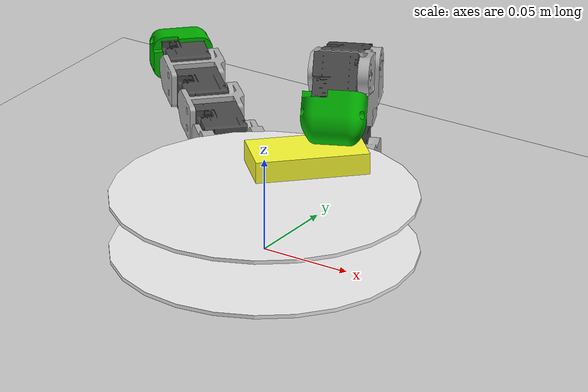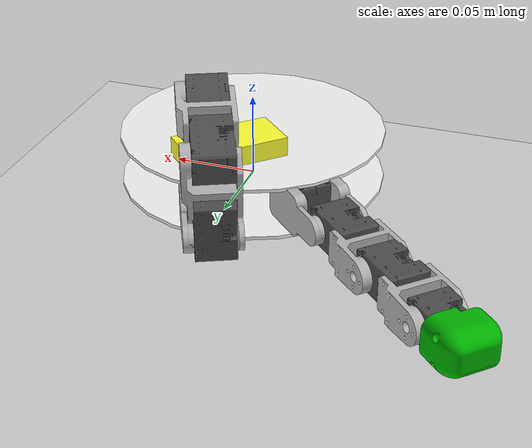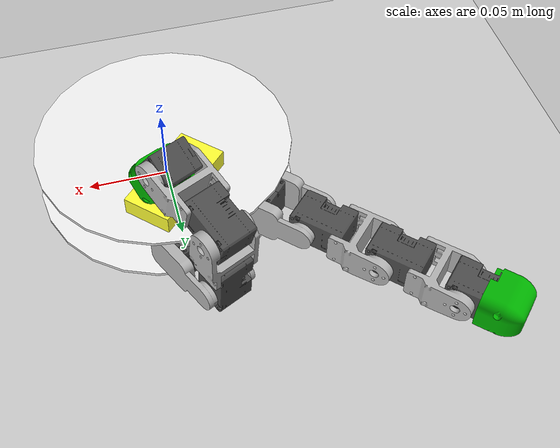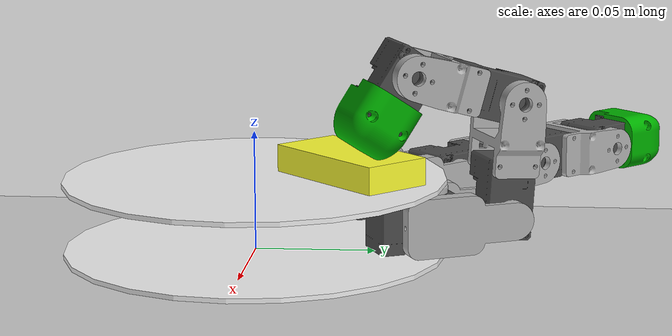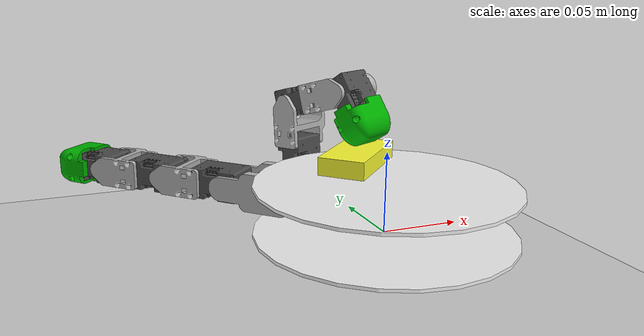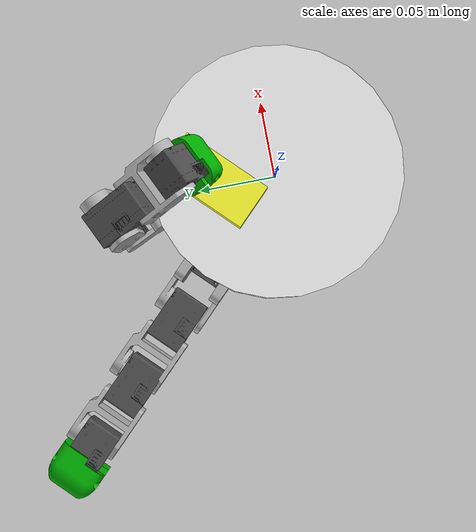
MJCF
<mujoco model="iiwa7">
    <compiler angle="radian" inertiafromgeom="true" meshdir="descriptions/v2/meshes/" />
    <size njmax="500" nconmax="100" />

    <option>
        <flag gravity="enable" />
    </option>

    <default>
        <joint limited="true" damping="1" armature="0" />
        <geom contype="1" conaffinity="1" condim="3" rgba="0.8 0.6 .4 1" margin="0.001" solref=".02 1" solimp=".8 .8 .01" material="geom" />
    </default>
<visual>
       <scale forcewidth="0.1" contactwidth="0.1" contactheight="0.1" />
 </visual>

 <default>
    <joint damping="0.01" frictionloss="0" />
    <default class="visual">
      <geom contype="0" conaffinity="0" />
    </default>
    <default class="collision">
      <geom contype="1" conaffinity="1" friction="1 0 0.1" solref="-100000 -200" />
    </default>
      <default class="obj">
      <geom condim="6" friction="1 0.5 0.1" />
    </default>

      <default class="fingers">
      <geom friction="1 0.5 0.2" />
    </default>

      <default class="sliding_finger">
      <geom friction="0.001 0. 0" />
    </default>
      <default class="visual1">
      <geom contype="1" conaffinity="1" />
    </default>
        <default class="visual2">
     <geom contype="1" conaffinity="1" />
    </default>
        <default class="visual3">
     <geom contype="1" conaffinity="1" />
    </default>
        <default class="visual4">
     <geom contype="1" conaffinity="1" />
    </default>
        <default class="visual5">
      <geom contype="1" conaffinity="1" />
    </default>

    <site rgba="1 0 0 0" />
  </default>

        <asset>
            <mesh name="base_link" file="base_link.stl" scale="0.001 0.001 0.001" />
            <mesh name="MCP_spread_motor_1" file="MCP_spread_motor_1.stl" scale="0.001 0.001 0.001" />
            <mesh name="MCP_motor_1" file="MCP_motor_1.stl" scale="0.001 0.001 0.001" />
            <mesh name="proximal_1" file="proximal_1.stl" scale="0.001 0.001 0.001" />
            <mesh name="PIP_DIP_motor_1" file="PIP_motor_1.stl" scale="0.001 0.001 0.001" />
            <mesh name="middle_1" file="middle_1.stl" scale="0.001 0.001 0.001" />
            <mesh name="distal_1" file="distal_1.stl" scale="0.001 0.001 0.001" />
             <mesh name="DIP_motor_1" file="DIP_motor_1.stl" scale="0.001 0.001 0.001" />
            <mesh name="metacarpal_1" file="metacarpal_1.stl" scale="0.001 0.001 0.001" />

            <texture name="texgeom" type="cube" builtin="flat" mark="cross" width="127" height="1278" rgb1="0.8 0.6 0.4" rgb2="0.8 0.6 0.4" markrgb="1 1 1" random="0.01" />
            <texture name="texplane" type="2d" builtin="checker" rgb1=".2 .3 .4" rgb2=".1 0.15 0.2" width="512" height="512" />

            <material name="MatPlane" reflectance="0.5" texture="texplane" texrepeat="1 1" texuniform="true" />
            <material name="geom" texture="texgeom" texuniform="true" />
             <texture builtin="flat" name="allegro_mount_tex" height="32" width="32" rgb1="0.2 0.2 0.2" type="cube" />
             <texture builtin="flat" name="hand_tex" height="32" width="32" rgb1="0.2 0.2 0.2 " type="cube" />
             <texture builtin="flat" name="tip_tex" height="32" width="32" rgb1="0.9 0.9 0.9" type="cube" />

            <material name="allegro_mount_mat" shininess="0.03" specular="0.25" />
            <material name="hand_mat" shininess="0.03" specular="0.25" />
            <material name="tip_mat" shininess="0.03" specular="0.25" />
        </asset>

    <worldbody>
        <light pos="0 0 10" castshadow="false" />
         <light directional="false" diffuse=".8 .8 .8" specular="0.3 0.3 0.3" pos="0 0 4.0" dir="0 -.15 -1" />
        <body name="world_base" euler="0 0 0" pos="0 0 -0.05">
            <geom name="floor" class="collision" type="plane" size="10 10 1" rgba=".8 .8 .8 1" material="MatPlane" />
        </body>

        <body name="hand_base" euler="0 0 0" pos="0 0 0.0">
            <freejoint />
             <geom class="fingers" name="hand_base_1" mass="0.01" pos="0 0 0.03" quat="1 0 0 0" type="cylinder" size="0.08 0.001" rgba=".95 0.95 0.95 1" />
             <geom class="fingers" name="hand_base_2" mass="0.01" pos="0 0 0" quat="1 0 0 0" type="cylinder" size="0.08 0.001" rgba=".95 0.95 0.95 1" />
            <body name="hand">

                                                         <body name="finger_0" pos=" 4.439344646909155e-18 0.0725  0.022" quat=" 1.0 0.0 -0.0 0.0 ">
                                                     <geom name="base_link_0" type="mesh" rgba="0.7 0.7 0.7 1" mesh="base_link" />
                                                     <body name="MCP_spread_motor_0" quat=" 0.9758958016217733 -0.0 -0.0 0.21823699131218882 ">
                                                          <inertial pos="0.00780713 0.0116002 -0.00421738" quat="0.556955 0.285031 -0.717518 0.306149" mass="0.218111" diaginertia="7.16804e-05 5.53793e-05 3.8057e-05" />
                                                         <geom type="mesh" rgba="0.3 0.3 0.3 1" mesh="MCP_spread_motor_1" name="MCP_spread_motor_0" />
                                                         <geom pos="0 0.009 0" type="mesh" rgba="0.7 0.7 0.7 1" mesh="metacarpal_1" name="metacarpal_0" />
                                                         <body name="MCP_motor_0" pos="-0.0135 0.0325 -0.008" quat=" 0.7317186900836027 0.681606747752937 -0.0 -0.0 ">
                                                             <inertial pos="0.0133661 0.0158676 3.0672e-06" quat="0.523581 0.475248 -0.523529 0.475309" mass="0.163332" diaginertia="5.41695e-05 4.73107e-05 1.68589e-05" />
                                                             <geom pos="0.0135 -0.0235 0.008" type="mesh" rgba="0.3 0.3 0.3 1" mesh="MCP_motor_1" name="MCP_motor_0" />
                                                             <geom pos="0.0135 -0.0235 0.008" type="mesh" rgba="0.7 0.7 0.7 1" mesh="proximal_1" name="proximal_0" />
                                                             <body name="PIP_DIP_motor_0" pos="0.001 0.049 0" quat=" 0.7776976500018826 0.6286385011924968 -0.0 -0.0 ">
                                                                 <inertial pos="0.0118444 0.0123626 3.07129e-06" quat="0.503638 0.496337 -0.503565 0.496408" mass="0.163525" diaginertia="3.3711e-05 2.87101e-05 1.70008e-05" />
                                                                 <geom pos="0.0125 -0.0725 0.008" type="mesh" rgba="0.3 0.3 0.3 1" mesh="PIP_DIP_motor_1" name="PIP_DIP_motor_0" />
                                                                 <geom pos="0.0125 -0.0725 0.008" type="mesh" rgba="0.7 0.7 0.7 1" mesh="middle_1" name="middle_0" />
                                                                 <body name="distal_0" pos="0 0.049 0" quat=" 0.8080003345535062 0.5891820256605096 -0.0 -0.0 ">
                                                                     <inertial pos="-0.0135 0.0167496 0" quat="0.5 0.5 -0.5 0.5" mass="0.112487" diaginertia="1.8e-05 1.7e-05 8e-06" />
                                                                     <geom pos="0.0125 -0.1215 0.008" type="mesh" rgba="0.3 0.3 0.3 1" mesh="DIP_motor_1" name="distal_0" />
                                                                    <geom class="sliding_finger" pos="0.0125 -0.1215 0.008" rgba="0 0.7 0  1" type="mesh" mesh="distal_1" name="distal_tip_0" />
                                                                     <site name="finger_0_tip" pos="0.012 0.03 0" euler="0 0 0" size="0.005  0.005 0.005" />
                                                                 </body>
                                                             </body>
                                                         </body>
                                                     </body>
                                              </body>

                                     <body name="finger_1 " pos=" -0.05126524163602469 0.051265241636024694  0.022" quat=" 0.9238795325112867 0.0 -0.0 0.3826834323650898 ">
                                 <geom name="base_link_1" type="mesh" rgba="0.7 0.7 0.7 1" mesh="base_link" />
                                 <body name="MCP_spread_motor_1" pos="0 0 0.0036">
                                     <inertial pos="0.00780713 0.0116002 -0.00421738" quat="0.556955 0.285031 -0.717518 0.306149" mass="0.218111" diaginertia="7.16804e-05 5.53793e-05 3.8057e-05" />
                                    <joint name="joint_10" type="hinge" pos="0 0 0" axis="0 0 -1" range="-2 2" />
                                     <geom type="mesh" rgba="0.3 0.3 0.3 1" mesh="MCP_spread_motor_1" name="MCP_spread_motor_1" />
                                     <geom pos="0 0.009 0" type="mesh" rgba="0.7 0.7 0.7 1" mesh="metacarpal_1" name="metacarpal_1" />
                                     <body name="MCP_motor_1" pos="-0.0135 0.0325 -0.008">
                                          <inertial pos="0.0133661 0.0158676 3.0672e-06" quat="0.523581 0.475248 -0.523529 0.475309" mass="0.163332" diaginertia="5.41695e-05 4.73107e-05 1.68589e-05" />
                                          <joint name="joint_11" pos="0 0 0" axis="-1 0 0" range="-2 2" />
                                         <geom pos="0.0135 -0.0235 0.008" type="mesh" rgba="0.3 0.3 0.3 1" mesh="MCP_motor_1" name="MCP_motor_1" />
                                         <geom pos="0.0135 -0.0235 0.008" type="mesh" rgba="0.7 0.7 0.7 1" mesh="proximal_1" name="proximal_1" />
                                         <body name="PIP_DIP_motor_1" pos="0 0.049 0">
                                             <inertial pos="0.0123661 0.0158676 3.0672e-06" quat="0.523581 0.475248 -0.523529 0.475309" mass="0.163332" diaginertia="5.41695e-05 4.73107e-05 1.68589e-05" />
                                            <joint name="joint_12" pos="0 0 0" axis="-1 0 0" range="-2 2" />
                                             <geom pos="0.0125 -0.0725 0.008" type="mesh" rgba="0.3 0.3 0.3 1" mesh="PIP_DIP_motor_1" name="PIP_DIP_motor_1" />
                                             <geom pos="0.0125 -0.0725 0.008" type="mesh" rgba="0.7 0.7 0.7 1" mesh="middle_1" name="middle_1" />
                                             <body name="distal_1 " pos="0 0.049 0">
                                                 <inertial pos="0.0118444 0.0123626 3.07129e-06" quat="0.503638 0.496337 -0.503565 0.496408" mass="0.163525" diaginertia="3.3711e-05 2.87101e-05 1.70008e-05" />
                                                 <joint name="joint_13" pos="0 0 0" axis="-1 0 0" range="-2 2" />
                                                 <geom pos="0.0125 -0.1215 0.008" type="mesh" rgba="0.3 0.3 0.3 1" mesh="DIP_motor_1" name="distal_1" />
                                                <geom class="sliding_finger" pos="0.0125 -0.1215 0.008" type="mesh" rgba="0 0.7 0 1" mesh="distal_1" name="distal_tip_1" />
                                                 <site name="finger_1_tip" pos="0.012 0.03 0" euler="0 0 0" size="0.005  0.005 0.005" />
                                             </body>
                                         </body>
                                     </body>
                                 </body>
                          </body>

                                                            <body name="box_2" pos="0.0 0.04 0.035 " quat=" 0.27059805007309856 0.2705980500730985 0.6532814824381883 0.6532814824381882 ">
                         <geom name="box_2" class="obj" mass="0.00005" pos="0 0 0" rgba="1 1 0.2 1" size="0.015 0.0075 0.03" type="box" />
                     </body>

                         </body>
                         </body>

                         </worldbody>

                             <actuator>
                 <motor name="joint_10" ctrllimited="true" ctrlrange="-2 2" joint="joint_10" />
                 <motor name="joint_11" ctrllimited="true" ctrlrange="-2 2" joint="joint_11" />
                 <motor name="joint_12" ctrllimited="true" ctrlrange="-2 2" joint="joint_12" />
                 <motor name="joint_13" ctrllimited="true" ctrlrange="-2 2" joint="joint_13" />
                 </actuator>

         </mujoco>
